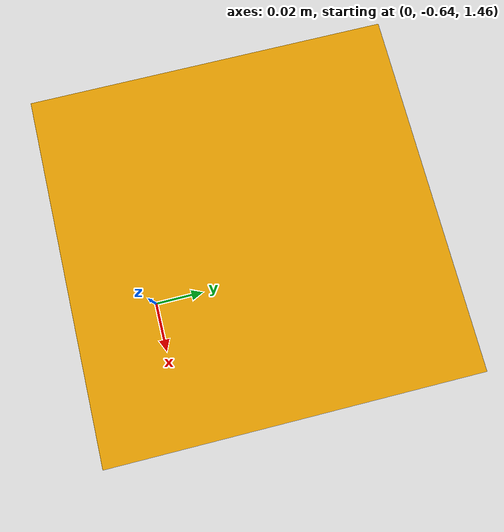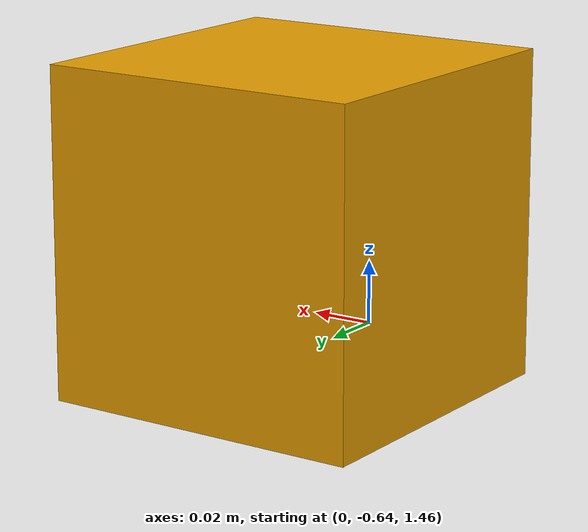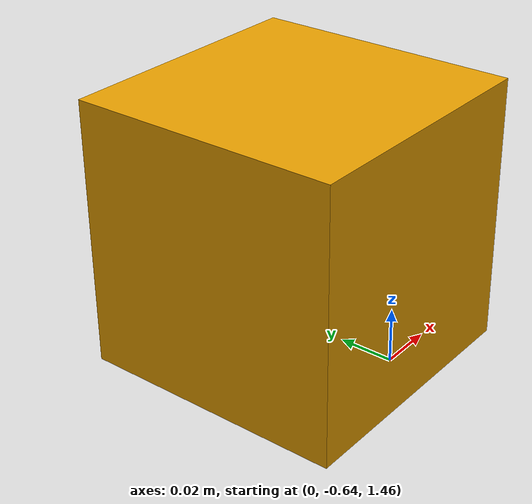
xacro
<?xml version="1.0"?>
<robot name="cs_test_box1" xmlns:xacro="http://www.ros.org/wiki/xacro">

<link name="cs_test_box1">
    <visual>
        <origin xyz="0 -0.6 1.5" rpy="0 0 0"/>
      <geometry>
        <mesh filename="package://cs_test/models/box.dae" scale="0.1 0.1 0.1"/>
      </geometry>
    </visual>

    <collision name="box1">
        <origin xyz="0 -0.6 1.5" rpy="0 0 0"/>
      <geometry>
        <mesh filename="package://cs_test/models/box.dae" scale="0.1 0.1 0.1"/>
      </geometry>
    </collision>

    <inertial>
        <origin xyz="0 -0.6 1.5" rpy="0 0 0"/>
        <mass value="0.3"/>
        <inertia ixx="0.083"  ixy="0"  ixz="0" iyy="0.083" iyz="0" izz="0.083"/>
    </inertial>
</link>

<gazebo reference="cs_test_box1">
    <mu1 value="200" />
    <mu2 value="100" />
    <selfCollide>true</selfCollide>
</gazebo>

</robot>
